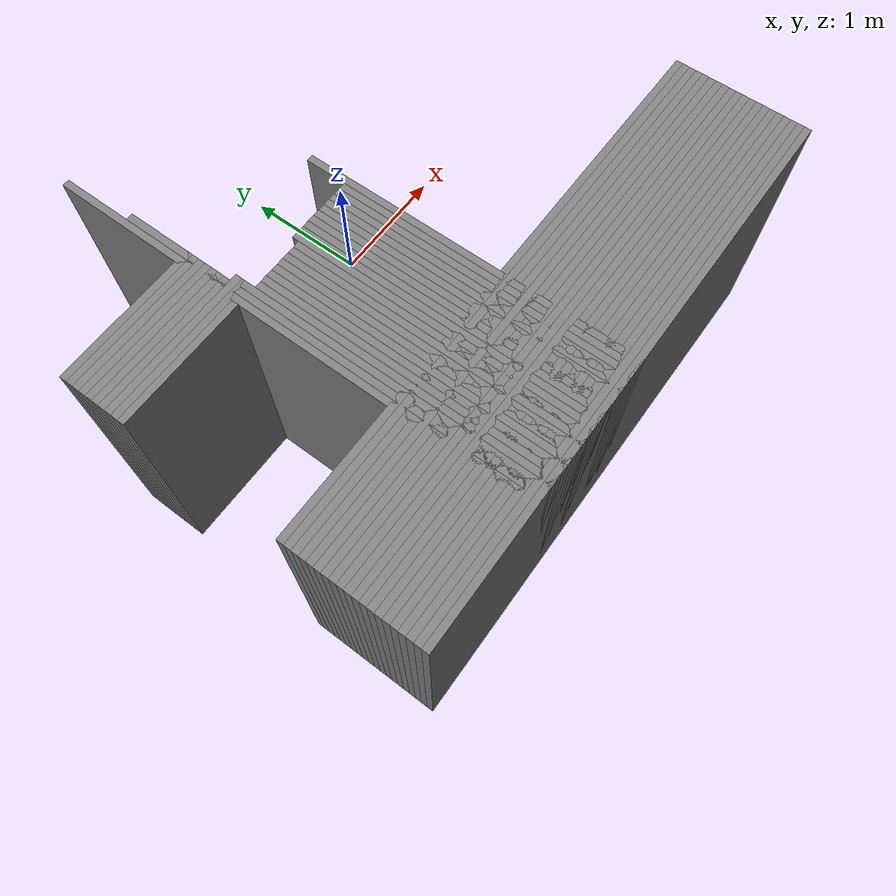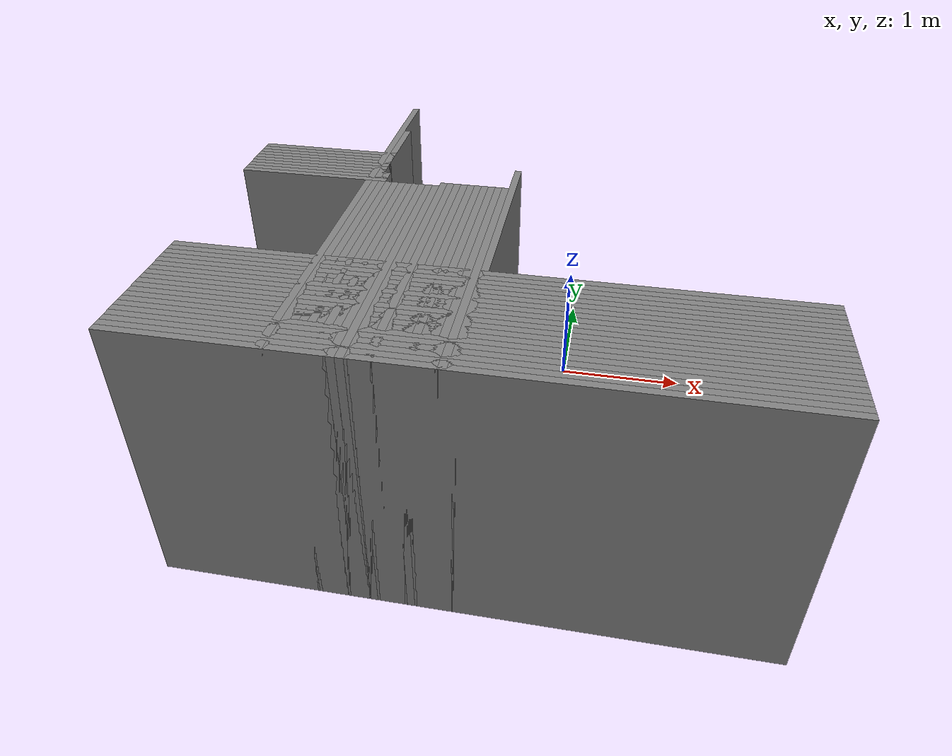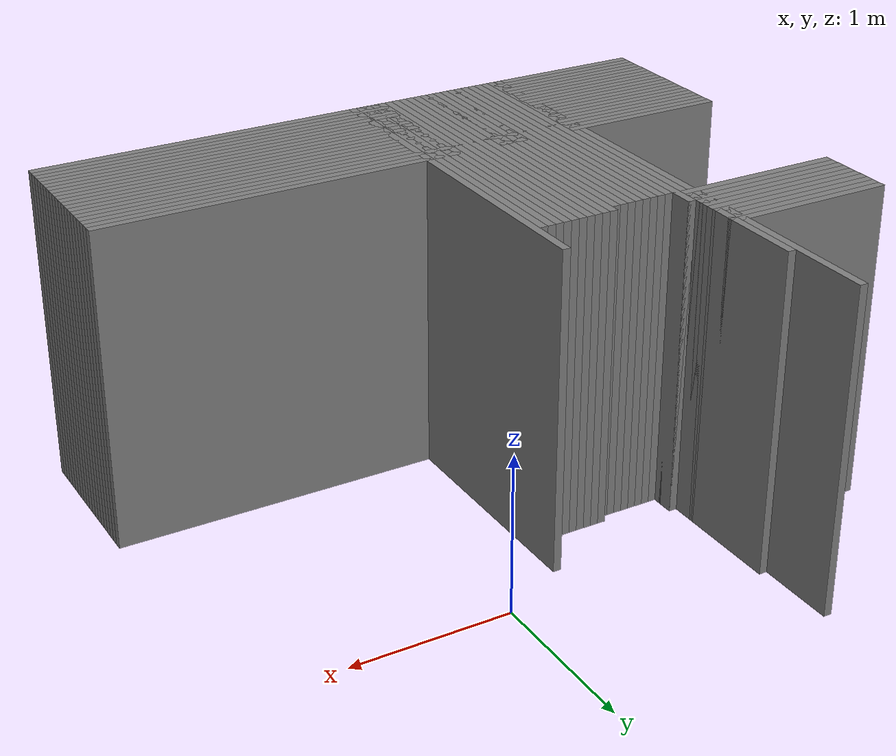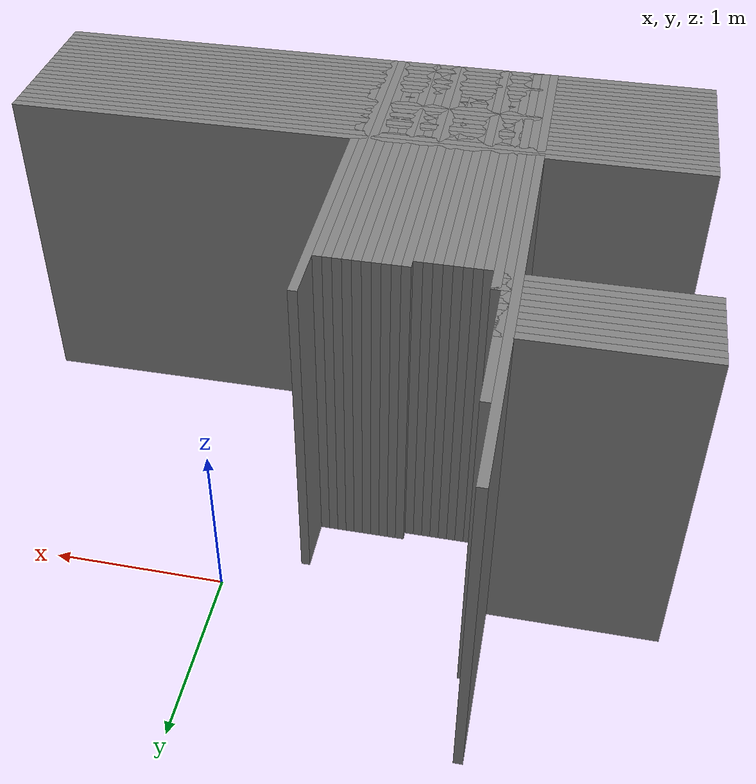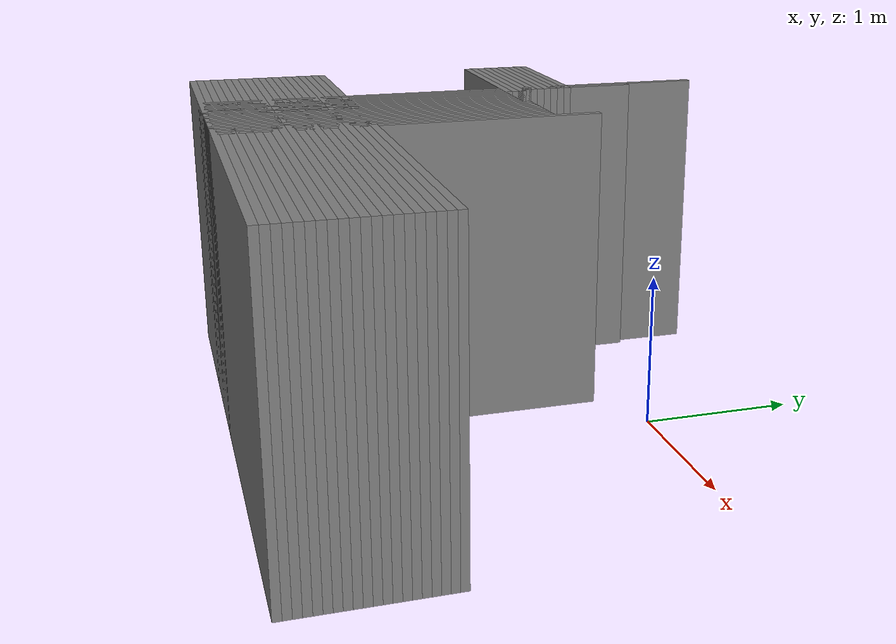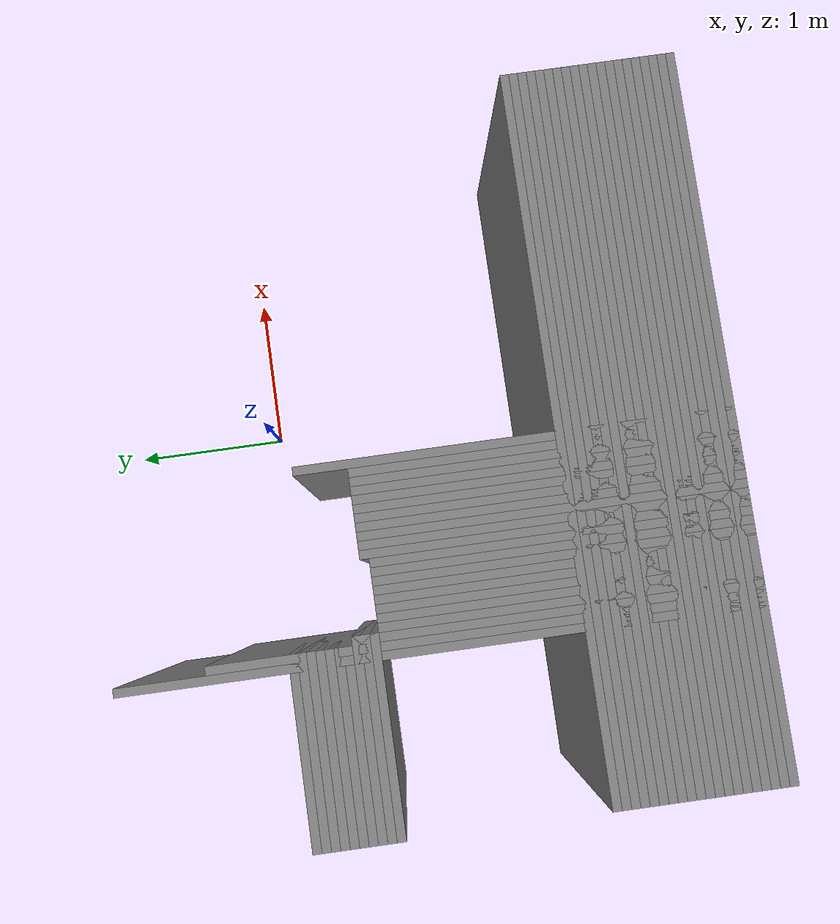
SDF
<sdf version="1.6">
 <model name="maze_map">
  <static>true</static>
  <link name="wall_100">
   <pose>-1.94 -0.09999999999999964 1.0 0 0 0</pose>
   <collision name="collision"><geometry><box><size>1.05 0.05 2.0</size></box></geometry></collision>
   <visual name="visual">
    <geometry><box><size>1.05 0.05 2.0</size></box></geometry>
    <material><ambient>0.3 0.3 0.3 1</ambient><diffuse>0.5 0.5 0.5 1</diffuse></material>
   </visual>
  </link>
  <link name="wall_102">
   <pose>-1.94 -0.1499999999999999 1.0 0 0 0</pose>
   <collision name="collision"><geometry><box><size>1.05 0.05 2.0</size></box></geometry></collision>
   <visual name="visual">
    <geometry><box><size>1.05 0.05 2.0</size></box></geometry>
    <material><ambient>0.3 0.3 0.3 1</ambient><diffuse>0.5 0.5 0.5 1</diffuse></material>
   </visual>
  </link>
  <link name="wall_104">
   <pose>-1.94 -0.19999999999999973 1.0 0 0 0</pose>
   <collision name="collision"><geometry><box><size>1.05 0.05 2.0</size></box></geometry></collision>
   <visual name="visual">
    <geometry><box><size>1.05 0.05 2.0</size></box></geometry>
    <material><ambient>0.3 0.3 0.3 1</ambient><diffuse>0.5 0.5 0.5 1</diffuse></material>
   </visual>
  </link>
  <link name="wall_106">
   <pose>-1.94 -0.24999999999999956 1.0 0 0 0</pose>
   <collision name="collision"><geometry><box><size>1.05 0.05 2.0</size></box></geometry></collision>
   <visual name="visual">
    <geometry><box><size>1.05 0.05 2.0</size></box></geometry>
    <material><ambient>0.3 0.3 0.3 1</ambient><diffuse>0.5 0.5 0.5 1</diffuse></material>
   </visual>
  </link>
  <link name="wall_108">
   <pose>-1.94 -0.2999999999999998 1.0 0 0 0</pose>
   <collision name="collision"><geometry><box><size>1.05 0.05 2.0</size></box></geometry></collision>
   <visual name="visual">
    <geometry><box><size>1.05 0.05 2.0</size></box></geometry>
    <material><ambient>0.3 0.3 0.3 1</ambient><diffuse>0.5 0.5 0.5 1</diffuse></material>
   </visual>
  </link>
  <link name="wall_110">
   <pose>-1.94 -0.34999999999999964 1.0 0 0 0</pose>
   <collision name="collision"><geometry><box><size>1.05 0.05 2.0</size></box></geometry></collision>
   <visual name="visual">
    <geometry><box><size>1.05 0.05 2.0</size></box></geometry>
    <material><ambient>0.3 0.3 0.3 1</ambient><diffuse>0.5 0.5 0.5 1</diffuse></material>
   </visual>
  </link>
  <link name="wall_112">
   <pose>-1.94 -0.3999999999999999 1.0 0 0 0</pose>
   <collision name="collision"><geometry><box><size>1.05 0.05 2.0</size></box></geometry></collision>
   <visual name="visual">
    <geometry><box><size>1.05 0.05 2.0</size></box></geometry>
    <material><ambient>0.3 0.3 0.3 1</ambient><diffuse>0.5 0.5 0.5 1</diffuse></material>
   </visual>
  </link>
  <link name="wall_114">
   <pose>-1.915 -0.44999999999999973 1.0 0 0 0</pose>
   <collision name="collision"><geometry><box><size>1.1 0.05 2.0</size></box></geometry></collision>
   <visual name="visual">
    <geometry><box><size>1.1 0.05 2.0</size></box></geometry>
    <material><ambient>0.3 0.3 0.3 1</ambient><diffuse>0.5 0.5 0.5 1</diffuse></material>
   </visual>
  </link>
  <link name="wall_116">
   <pose>-1.915 -0.5 1.0 0 0 0</pose>
   <collision name="collision"><geometry><box><size>1.1 0.05 2.0</size></box></geometry></collision>
   <visual name="visual">
    <geometry><box><size>1.1 0.05 2.0</size></box></geometry>
    <material><ambient>0.3 0.3 0.3 1</ambient><diffuse>0.5 0.5 0.5 1</diffuse></material>
   </visual>
  </link>
  <link name="wall_118">
   <pose>-1.915 -0.5499999999999998 1.0 0 0 0</pose>
   <collision name="collision"><geometry><box><size>1.1 0.05 2.0</size></box></geometry></collision>
   <visual name="visual">
    <geometry><box><size>1.1 0.05 2.0</size></box></geometry>
    <material><ambient>0.3 0.3 0.3 1</ambient><diffuse>0.5 0.5 0.5 1</diffuse></material>
   </visual>
  </link>
  <link name="wall_142">
   <pose>-0.41500000000000004 -1.6999999999999997 1.0 0 0 0</pose>
   <collision name="collision">
    <geometry><box><size>4.1000000000000005 0.05 2.0</size></box></geometry>
   </collision>
   <visual name="visual">
    <geometry><box><size>4.1000000000000005 0.05 2.0</size></box></geometry>
    <material><ambient>0.3 0.3 0.3 1</ambient><diffuse>0.5 0.5 0.5 1</diffuse></material>
   </visual>
  </link>
  <link name="wall_143">
   <pose>-0.41500000000000004 -1.75 1.0 0 0 0</pose>
   <collision name="collision">
    <geometry><box><size>4.1000000000000005 0.05 2.0</size></box></geometry>
   </collision>
   <visual name="visual">
    <geometry><box><size>4.1000000000000005 0.05 2.0</size></box></geometry>
    <material><ambient>0.3 0.3 0.3 1</ambient><diffuse>0.5 0.5 0.5 1</diffuse></material>
   </visual>
  </link>
  <link name="wall_144">
   <pose>-0.41500000000000004 -1.7999999999999998 1.0 0 0 0</pose>
   <collision name="collision">
    <geometry><box><size>4.1000000000000005 0.05 2.0</size></box></geometry>
   </collision>
   <visual name="visual">
    <geometry><box><size>4.1000000000000005 0.05 2.0</size></box></geometry>
    <material><ambient>0.3 0.3 0.3 1</ambient><diffuse>0.5 0.5 0.5 1</diffuse></material>
   </visual>
  </link>
  <link name="wall_145">
   <pose>-0.41500000000000004 -1.8499999999999999 1.0 0 0 0</pose>
   <collision name="collision">
    <geometry><box><size>4.1000000000000005 0.05 2.0</size></box></geometry>
   </collision>
   <visual name="visual">
    <geometry><box><size>4.1000000000000005 0.05 2.0</size></box></geometry>
    <material><ambient>0.3 0.3 0.3 1</ambient><diffuse>0.5 0.5 0.5 1</diffuse></material>
   </visual>
  </link>
  <link name="wall_146">
   <pose>-0.41500000000000004 -1.9 1.0 0 0 0</pose>
   <collision name="collision">
    <geometry><box><size>4.1000000000000005 0.05 2.0</size></box></geometry>
   </collision>
   <visual name="visual">
    <geometry><box><size>4.1000000000000005 0.05 2.0</size></box></geometry>
    <material><ambient>0.3 0.3 0.3 1</ambient><diffuse>0.5 0.5 0.5 1</diffuse></material>
   </visual>
  </link>
  <link name="wall_147">
   <pose>-0.41500000000000004 -1.9499999999999997 1.0 0 0 0</pose>
   <collision name="collision">
    <geometry><box><size>4.1000000000000005 0.05 2.0</size></box></geometry>
   </collision>
   <visual name="visual">
    <geometry><box><size>4.1000000000000005 0.05 2.0</size></box></geometry>
    <material><ambient>0.3 0.3 0.3 1</ambient><diffuse>0.5 0.5 0.5 1</diffuse></material>
   </visual>
  </link>
  <link name="wall_148">
   <pose>-0.41500000000000004 -2.0 1.0 0 0 0</pose>
   <collision name="collision">
    <geometry><box><size>4.1000000000000005 0.05 2.0</size></box></geometry>
   </collision>
   <visual name="visual">
    <geometry><box><size>4.1000000000000005 0.05 2.0</size></box></geometry>
    <material><ambient>0.3 0.3 0.3 1</ambient><diffuse>0.5 0.5 0.5 1</diffuse></material>
   </visual>
  </link>
  <link name="wall_149">
   <pose>-0.41500000000000004 -2.05 1.0 0 0 0</pose>
   <collision name="collision">
    <geometry><box><size>4.1000000000000005 0.05 2.0</size></box></geometry>
   </collision>
   <visual name="visual">
    <geometry><box><size>4.1000000000000005 0.05 2.0</size></box></geometry>
    <material><ambient>0.3 0.3 0.3 1</ambient><diffuse>0.5 0.5 0.5 1</diffuse></material>
   </visual>
  </link>
  <link name="wall_150">
   <pose>-0.41500000000000004 -2.0999999999999996 1.0 0 0 0</pose>
   <collision name="collision">
    <geometry><box><size>4.1000000000000005 0.05 2.0</size></box></geometry>
   </collision>
   <visual name="visual">
    <geometry><box><size>4.1000000000000005 0.05 2.0</size></box></geometry>
    <material><ambient>0.3 0.3 0.3 1</ambient><diffuse>0.5 0.5 0.5 1</diffuse></material>
   </visual>
  </link>
  <link name="wall_151">
   <pose>-0.41500000000000004 -2.15 1.0 0 0 0</pose>
   <collision name="collision">
    <geometry><box><size>4.1000000000000005 0.05 2.0</size></box></geometry>
   </collision>
   <visual name="visual">
    <geometry><box><size>4.1000000000000005 0.05 2.0</size></box></geometry>
    <material><ambient>0.3 0.3 0.3 1</ambient><diffuse>0.5 0.5 0.5 1</diffuse></material>
   </visual>
  </link>
  <link name="wall_152">
   <pose>-0.41500000000000004 -2.1999999999999997 1.0 0 0 0</pose>
   <collision name="collision">
    <geometry><box><size>4.1000000000000005 0.05 2.0</size></box></geometry>
   </collision>
   <visual name="visual">
    <geometry><box><size>4.1000000000000005 0.05 2.0</size></box></geometry>
    <material><ambient>0.3 0.3 0.3 1</ambient><diffuse>0.5 0.5 0.5 1</diffuse></material>
   </visual>
  </link>
  <link name="wall_153">
   <pose>-0.41500000000000004 -2.25 1.0 0 0 0</pose>
   <collision name="collision">
    <geometry><box><size>4.1000000000000005 0.05 2.0</size></box></geometry>
   </collision>
   <visual name="visual">
    <geometry><box><size>4.1000000000000005 0.05 2.0</size></box></geometry>
    <material><ambient>0.3 0.3 0.3 1</ambient><diffuse>0.5 0.5 0.5 1</diffuse></material>
   </visual>
  </link>
  <link name="wall_154">
   <pose>-0.41500000000000004 -2.3 1.0 0 0 0</pose>
   <collision name="collision">
    <geometry><box><size>4.1000000000000005 0.05 2.0</size></box></geometry>
   </collision>
   <visual name="visual">
    <geometry><box><size>4.1000000000000005 0.05 2.0</size></box></geometry>
    <material><ambient>0.3 0.3 0.3 1</ambient><diffuse>0.5 0.5 0.5 1</diffuse></material>
   </visual>
  </link>
  <link name="wall_155">
   <pose>-0.41500000000000004 -2.3499999999999996 1.0 0 0 0</pose>
   <collision name="collision">
    <geometry><box><size>4.1000000000000005 0.05 2.0</size></box></geometry>
   </collision>
   <visual name="visual">
    <geometry><box><size>4.1000000000000005 0.05 2.0</size></box></geometry>
    <material><ambient>0.3 0.3 0.3 1</ambient><diffuse>0.5 0.5 0.5 1</diffuse></material>
   </visual>
  </link>
  <link name="wall_156">
   <pose>-0.41500000000000004 -2.4 1.0 0 0 0</pose>
   <collision name="collision">
    <geometry><box><size>4.1000000000000005 0.05 2.0</size></box></geometry>
   </collision>
   <visual name="visual">
    <geometry><box><size>4.1000000000000005 0.05 2.0</size></box></geometry>
    <material><ambient>0.3 0.3 0.3 1</ambient><diffuse>0.5 0.5 0.5 1</diffuse></material>
   </visual>
  </link>
  <link name="wall_157">
   <pose>-0.41500000000000004 -2.4499999999999997 1.0 0 0 0</pose>
   <collision name="collision">
    <geometry><box><size>4.1000000000000005 0.05 2.0</size></box></geometry>
   </collision>
   <visual name="visual">
    <geometry><box><size>4.1000000000000005 0.05 2.0</size></box></geometry>
    <material><ambient>0.3 0.3 0.3 1</ambient><diffuse>0.5 0.5 0.5 1</diffuse></material>
   </visual>
  </link>
  <link name="wall_158">
   <pose>-0.41500000000000004 -2.5 1.0 0 0 0</pose>
   <collision name="collision">
    <geometry><box><size>4.1000000000000005 0.05 2.0</size></box></geometry>
   </collision>
   <visual name="visual">
    <geometry><box><size>4.1000000000000005 0.05 2.0</size></box></geometry>
    <material><ambient>0.3 0.3 0.3 1</ambient><diffuse>0.5 0.5 0.5 1</diffuse></material>
   </visual>
  </link>
  <link name="wall_159">
   <pose>-0.41500000000000004 -2.55 1.0 0 0 0</pose>
   <collision name="collision">
    <geometry><box><size>4.1000000000000005 0.05 2.0</size></box></geometry>
   </collision>
   <visual name="visual">
    <geometry><box><size>4.1000000000000005 0.05 2.0</size></box></geometry>
    <material><ambient>0.3 0.3 0.3 1</ambient><diffuse>0.5 0.5 0.5 1</diffuse></material>
   </visual>
  </link>
  <link name="wall_160">
   <pose>-0.41500000000000004 -2.6 1.0 0 0 0</pose>
   <collision name="collision">
    <geometry><box><size>4.1000000000000005 0.05 2.0</size></box></geometry>
   </collision>
   <visual name="visual">
    <geometry><box><size>4.1000000000000005 0.05 2.0</size></box></geometry>
    <material><ambient>0.3 0.3 0.3 1</ambient><diffuse>0.5 0.5 0.5 1</diffuse></material>
   </visual>
  </link>
  <link name="wall_161">
   <pose>-0.41500000000000004 -2.65 1.0 0 0 0</pose>
   <collision name="collision">
    <geometry><box><size>4.1000000000000005 0.05 2.0</size></box></geometry>
   </collision>
   <visual name="visual">
    <geometry><box><size>4.1000000000000005 0.05 2.0</size></box></geometry>
    <material><ambient>0.3 0.3 0.3 1</ambient><diffuse>0.5 0.5 0.5 1</diffuse></material>
   </visual>
  </link>
  <link name="wall_182">
   <pose>-1.4899999999999998 -0.8999999999999999 1.0 0 0 0</pose>
   <collision name="collision">
    <geometry><box><size>0.05 3.5500000000000003 2.0</size></box></geometry>
   </collision>
   <visual name="visual">
    <geometry><box><size>0.05 3.5500000000000003 2.0</size></box></geometry>
    <material><ambient>0.3 0.3 0.3 1</ambient><diffuse>0.5 0.5 0.5 1</diffuse></material>
   </visual>
  </link>
  <link name="wall_184">
   <pose>-1.44 -1.15 1.0 0 0 0</pose>
   <collision name="collision">
    <geometry><box><size>0.05 3.0500000000000003 2.0</size></box></geometry>
   </collision>
   <visual name="visual">
    <geometry><box><size>0.05 3.0500000000000003 2.0</size></box></geometry>
    <material><ambient>0.3 0.3 0.3 1</ambient><diffuse>0.5 0.5 0.5 1</diffuse></material>
   </visual>
  </link>
  <link name="wall_187">
   <pose>-1.39 -1.5499999999999998 1.0 0 0 0</pose>
   <collision name="collision"><geometry><box><size>0.05 2.25 2.0</size></box></geometry></collision>
   <visual name="visual">
    <geometry><box><size>0.05 2.25 2.0</size></box></geometry>
    <material><ambient>0.3 0.3 0.3 1</ambient><diffuse>0.5 0.5 0.5 1</diffuse></material>
   </visual>
  </link>
  <link name="wall_190">
   <pose>-1.3399999999999999 -1.6249999999999998 1.0 0 0 0</pose>
   <collision name="collision"><geometry><box><size>0.05 2.1 2.0</size></box></geometry></collision>
   <visual name="visual">
    <geometry><box><size>0.05 2.1 2.0</size></box></geometry>
    <material><ambient>0.3 0.3 0.3 1</ambient><diffuse>0.5 0.5 0.5 1</diffuse></material>
   </visual>
  </link>
  <link name="wall_193">
   <pose>-1.2899999999999998 -1.6249999999999998 1.0 0 0 0</pose>
   <collision name="collision"><geometry><box><size>0.05 2.1 2.0</size></box></geometry></collision>
   <visual name="visual">
    <geometry><box><size>0.05 2.1 2.0</size></box></geometry>
    <material><ambient>0.3 0.3 0.3 1</ambient><diffuse>0.5 0.5 0.5 1</diffuse></material>
   </visual>
  </link>
  <link name="wall_196">
   <pose>-1.2399999999999998 -1.6249999999999998 1.0 0 0 0</pose>
   <collision name="collision"><geometry><box><size>0.05 2.1 2.0</size></box></geometry></collision>
   <visual name="visual">
    <geometry><box><size>0.05 2.1 2.0</size></box></geometry>
    <material><ambient>0.3 0.3 0.3 1</ambient><diffuse>0.5 0.5 0.5 1</diffuse></material>
   </visual>
  </link>
  <link name="wall_199">
   <pose>-1.19 -1.6249999999999998 1.0 0 0 0</pose>
   <collision name="collision"><geometry><box><size>0.05 2.1 2.0</size></box></geometry></collision>
   <visual name="visual">
    <geometry><box><size>0.05 2.1 2.0</size></box></geometry>
    <material><ambient>0.3 0.3 0.3 1</ambient><diffuse>0.5 0.5 0.5 1</diffuse></material>
   </visual>
  </link>
  <link name="wall_202">
   <pose>-1.14 -1.6249999999999998 1.0 0 0 0</pose>
   <collision name="collision"><geometry><box><size>0.05 2.1 2.0</size></box></geometry></collision>
   <visual name="visual">
    <geometry><box><size>0.05 2.1 2.0</size></box></geometry>
    <material><ambient>0.3 0.3 0.3 1</ambient><diffuse>0.5 0.5 0.5 1</diffuse></material>
   </visual>
  </link>
  <link name="wall_205">
   <pose>-1.0899999999999999 -1.6249999999999998 1.0 0 0 0</pose>
   <collision name="collision"><geometry><box><size>0.05 2.1 2.0</size></box></geometry></collision>
   <visual name="visual">
    <geometry><box><size>0.05 2.1 2.0</size></box></geometry>
    <material><ambient>0.3 0.3 0.3 1</ambient><diffuse>0.5 0.5 0.5 1</diffuse></material>
   </visual>
  </link>
  <link name="wall_209">
   <pose>-1.0399999999999998 -1.6249999999999998 1.0 0 0 0</pose>
   <collision name="collision"><geometry><box><size>0.05 2.1 2.0</size></box></geometry></collision>
   <visual name="visual">
    <geometry><box><size>0.05 2.1 2.0</size></box></geometry>
    <material><ambient>0.3 0.3 0.3 1</ambient><diffuse>0.5 0.5 0.5 1</diffuse></material>
   </visual>
  </link>
  <link name="wall_212">
   <pose>-0.9899999999999998 -1.6249999999999998 1.0 0 0 0</pose>
   <collision name="collision"><geometry><box><size>0.05 2.1 2.0</size></box></geometry></collision>
   <visual name="visual">
    <geometry><box><size>0.05 2.1 2.0</size></box></geometry>
    <material><ambient>0.3 0.3 0.3 1</ambient><diffuse>0.5 0.5 0.5 1</diffuse></material>
   </visual>
  </link>
  <link name="wall_215">
   <pose>-0.94 -1.5999999999999999 1.0 0 0 0</pose>
   <collision name="collision"><geometry><box><size>0.05 2.15 2.0</size></box></geometry></collision>
   <visual name="visual">
    <geometry><box><size>0.05 2.15 2.0</size></box></geometry>
    <material><ambient>0.3 0.3 0.3 1</ambient><diffuse>0.5 0.5 0.5 1</diffuse></material>
   </visual>
  </link>
  <link name="wall_219">
   <pose>-0.8899999999999999 -1.5999999999999999 1.0 0 0 0</pose>
   <collision name="collision"><geometry><box><size>0.05 2.15 2.0</size></box></geometry></collision>
   <visual name="visual">
    <geometry><box><size>0.05 2.15 2.0</size></box></geometry>
    <material><ambient>0.3 0.3 0.3 1</ambient><diffuse>0.5 0.5 0.5 1</diffuse></material>
   </visual>
  </link>
  <link name="wall_222">
   <pose>-0.8399999999999999 -1.5999999999999999 1.0 0 0 0</pose>
   <collision name="collision"><geometry><box><size>0.05 2.15 2.0</size></box></geometry></collision>
   <visual name="visual">
    <geometry><box><size>0.05 2.15 2.0</size></box></geometry>
    <material><ambient>0.3 0.3 0.3 1</ambient><diffuse>0.5 0.5 0.5 1</diffuse></material>
   </visual>
  </link>
  <link name="wall_225">
   <pose>-0.7899999999999998 -1.5999999999999999 1.0 0 0 0</pose>
   <collision name="collision"><geometry><box><size>0.05 2.15 2.0</size></box></geometry></collision>
   <visual name="visual">
    <geometry><box><size>0.05 2.15 2.0</size></box></geometry>
    <material><ambient>0.3 0.3 0.3 1</ambient><diffuse>0.5 0.5 0.5 1</diffuse></material>
   </visual>
  </link>
  <link name="wall_227">
   <pose>-0.7399999999999998 -1.5999999999999999 1.0 0 0 0</pose>
   <collision name="collision"><geometry><box><size>0.05 2.15 2.0</size></box></geometry></collision>
   <visual name="visual">
    <geometry><box><size>0.05 2.15 2.0</size></box></geometry>
    <material><ambient>0.3 0.3 0.3 1</ambient><diffuse>0.5 0.5 0.5 1</diffuse></material>
   </visual>
  </link>
  <link name="wall_229">
   <pose>-0.69 -1.5999999999999999 1.0 0 0 0</pose>
   <collision name="collision"><geometry><box><size>0.05 2.15 2.0</size></box></geometry></collision>
   <visual name="visual">
    <geometry><box><size>0.05 2.15 2.0</size></box></geometry>
    <material><ambient>0.3 0.3 0.3 1</ambient><diffuse>0.5 0.5 0.5 1</diffuse></material>
   </visual>
  </link>
  <link name="wall_231">
   <pose>-0.6399999999999999 -1.5999999999999999 1.0 0 0 0</pose>
   <collision name="collision"><geometry><box><size>0.05 2.15 2.0</size></box></geometry></collision>
   <visual name="visual">
    <geometry><box><size>0.05 2.15 2.0</size></box></geometry>
    <material><ambient>0.3 0.3 0.3 1</ambient><diffuse>0.5 0.5 0.5 1</diffuse></material>
   </visual>
  </link>
  <link name="wall_233">
   <pose>-0.5899999999999999 -1.5999999999999999 1.0 0 0 0</pose>
   <collision name="collision"><geometry><box><size>0.05 2.15 2.0</size></box></geometry></collision>
   <visual name="visual">
    <geometry><box><size>0.05 2.15 2.0</size></box></geometry>
    <material><ambient>0.3 0.3 0.3 1</ambient><diffuse>0.5 0.5 0.5 1</diffuse></material>
   </visual>
  </link>
  <link name="wall_235">
   <pose>-0.5399999999999998 -1.5999999999999999 1.0 0 0 0</pose>
   <collision name="collision"><geometry><box><size>0.05 2.15 2.0</size></box></geometry></collision>
   <visual name="visual">
    <geometry><box><size>0.05 2.15 2.0</size></box></geometry>
    <material><ambient>0.3 0.3 0.3 1</ambient><diffuse>0.5 0.5 0.5 1</diffuse></material>
   </visual>
  </link>
  <link name="wall_238">
   <pose>-0.48999999999999977 -1.5999999999999999 1.0 0 0 0</pose>
   <collision name="collision"><geometry><box><size>0.05 2.15 2.0</size></box></geometry></collision>
   <visual name="visual">
    <geometry><box><size>0.05 2.15 2.0</size></box></geometry>
    <material><ambient>0.3 0.3 0.3 1</ambient><diffuse>0.5 0.5 0.5 1</diffuse></material>
   </visual>
  </link>
  <link name="wall_241">
   <pose>-0.43999999999999995 -1.4499999999999997 1.0 0 0 0</pose>
   <collision name="collision"><geometry><box><size>0.05 2.45 2.0</size></box></geometry></collision>
   <visual name="visual">
    <geometry><box><size>0.05 2.45 2.0</size></box></geometry>
    <material><ambient>0.3 0.3 0.3 1</ambient><diffuse>0.5 0.5 0.5 1</diffuse></material>
   </visual>
  </link>
 </model>
</sdf>
